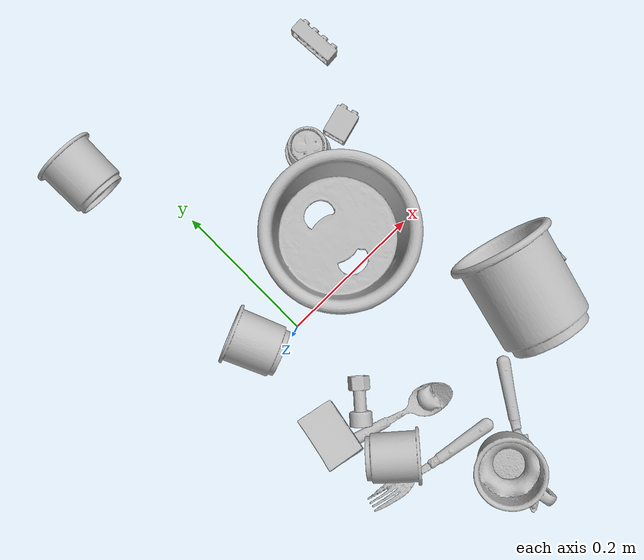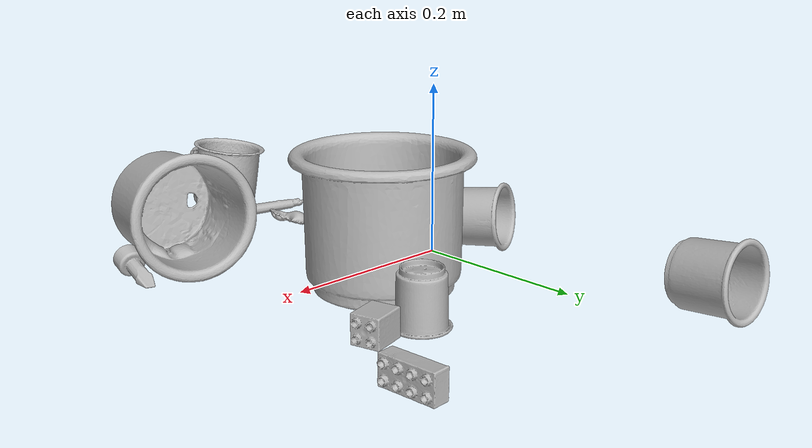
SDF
<sdf version="1.4">
  <world name="default">
    <light name="light1" type="point">
      <pose>0 0 1 0 0 0</pose>
      <diffuse>3 3 3 1</diffuse>
      <specular>3 3 3 1</specular>
    </light>
    <light name="light2" type="point">
      <pose>0 0.5 2 0 0 0</pose>
      <diffuse>1 1 1 1</diffuse>
      <specular>1 1 1 1</specular>
    </light>
    <light name="light3" type="point">
      <pose>0 0.5 2 0 0 0</pose>
      <diffuse>3 3 3 1</diffuse>
      <specular>3 3 3 1</specular>
    </light>
    <scene>
      <ambient>0.7 0.7 0.7</ambient>
    </scene>
    <model name="cup1">
      <link name="link_cup1">
        <collision name="default">
          <geometry>
            <mesh>
              <uri>model://e_cups/collision_meshes/collision.obj</uri>
              <scale>1.0 1.0 1.0</scale>
            </mesh>
          </geometry>
          <surface>
            <friction>
              <ode>
                <mu>0.5</mu>
                <mu2>0.5</mu2>
              </ode>
            </friction>
          <contact>
        <ode>
            <max_vel>0</max_vel>
            <min_depth>0.0001</min_depth>
            <kp>1e8</kp>
        </ode>
    </contact></surface>
        </collision>
        <visual name="default">
          <geometry>
            <mesh>
              <uri>model://e_cups/visual_meshes/visual.dae</uri>
              <scale>1.0 1.0 1.0</scale>
            </mesh>
          </geometry>
        </visual>
        <inertial>
          <mass>0.07679437845945358</mass>
          <pose>0.001135574304498732 0.002879783743992448 -0.0038829718250781298 0.6952411595659588 0.08767733322521654 -0.5235244631248706</pose>
          <inertia>
            <ixx>6.771342e-05</ixx>
            <iyy>7.077022e-05</iyy>
            <izz>6.4741864e-05</izz>
            <ixy>0</ixy>
            <ixz>0</ixz>
            <iyz>0</iyz>
          </inertia>
        </inertial>
      </link>
      <pose>-0.028272267431020737 -0.20751388370990753 0.03474121913313866 1.4816538265400812 -0.030157339568917595 0.8614214028507958</pose>
    </model>
    <model name="silverware1">
      <link name="link_silverware1">
        <collision name="default">
          <geometry>
            <mesh>
              <uri>model://spoon/collision_meshes/collision.obj</uri>
              <scale>1.0 1.0 1.0</scale>
            </mesh>
          </geometry>
          <surface>
            <friction>
              <ode>
                <mu>0.5</mu>
                <mu2>0.5</mu2>
              </ode>
            </friction>
          <contact>
        <ode>
            <max_vel>0</max_vel>
            <min_depth>0.0001</min_depth>
            <kp>1e8</kp>
        </ode>
    </contact></surface>
        </collision>
        <visual name="default">
          <geometry>
            <mesh>
              <uri>model://spoon/visual_meshes/visual.dae</uri>
              <scale>1.0 1.0 1.0</scale>
            </mesh>
          </geometry>
        </visual>
        <inertial>
          <mass>0.015083584003150463</mass>
          <pose>-0.005526313092559576 -0.001603418029844761 -0.000727165665011853 0.035216710638299134 -0.03906584880684835 0.006150613179751253</pose>
          <inertia>
            <ixx>8.389734e-07</ixx>
            <iyy>5.739254e-05</iyy>
            <izz>5.7806283e-05</izz>
            <ixy>0</ixy>
            <ixz>0</ixz>
            <iyz>0</iyz>
          </inertia>
        </inertial>
      </link>
      <pose>-0.003868567757308483 -0.17168578505516052 0.00936198327690363 -0.05562627037130128 -0.0035775753959877907 -0.27592900054186414</pose>
    </model>
    <model name="cup2">
      <link name="link_cup2">
        <collision name="default">
          <geometry>
            <mesh>
              <uri>model://g_cups/collision_meshes/collision.obj</uri>
              <scale>1.0 1.0 1.0</scale>
            </mesh>
          </geometry>
          <surface>
            <friction>
              <ode>
                <mu>0.5</mu>
                <mu2>0.5</mu2>
              </ode>
            </friction>
          <contact>
        <ode>
            <max_vel>0</max_vel>
            <min_depth>0.0001</min_depth>
            <kp>1e8</kp>
        </ode>
    </contact></surface>
        </collision>
        <visual name="default">
          <geometry>
            <mesh>
              <uri>model://g_cups/visual_meshes/visual.dae</uri>
              <scale>1.0 1.0 1.0</scale>
            </mesh>
          </geometry>
        </visual>
        <inertial>
          <mass>0.04187431186437607</mass>
          <pose>-0.0007946277037262917 -4.2064348235726357e-05 -0.0021329382434487343 -0.21382305588888167 -0.31410659578681893 0.31120215507532384</pose>
          <inertia>
            <ixx>4.8876722e-05</ixx>
            <iyy>4.871046e-05</iyy>
            <izz>5.0627856e-05</izz>
            <ixy>0</ixy>
            <ixz>0</ixz>
            <iyz>0</iyz>
          </inertia>
        </inertial>
      </link>
      <pose>-0.057655174285173416 0.33540210127830505 0.040138378739356995 1.4551195653559754 -0.5190330906240583 -3.093143476983353</pose>
    </model>
    <model name="silverware2">
      <link name="link_silverware2">
        <collision name="default">
          <geometry>
            <mesh>
              <uri>model://fork/collision_meshes/collision.obj</uri>
              <scale>1.0 1.0 1.0</scale>
            </mesh>
          </geometry>
          <surface>
            <friction>
              <ode>
                <mu>0.5</mu>
                <mu2>0.5</mu2>
              </ode>
            </friction>
          <contact>
        <ode>
            <max_vel>0</max_vel>
            <min_depth>0.0001</min_depth>
            <kp>1e8</kp>
        </ode>
    </contact></surface>
        </collision>
        <visual name="default">
          <geometry>
            <mesh>
              <uri>model://fork/visual_meshes/visual.dae</uri>
              <scale>1.0 1.0 1.0</scale>
            </mesh>
          </geometry>
        </visual>
        <inertial>
          <mass>0.025364622473716736</mass>
          <pose>-0.029570050537586212 0.00046588227269239724 0.00032188615296036005 -0.013551666838441594 -0.010977837199147297 0.014453899745261501</pose>
          <inertia>
            <ixx>8.8917335e-07</ixx>
            <iyy>6.621973e-05</iyy>
            <izz>6.661743e-05</izz>
            <ixy>0</ixy>
            <ixz>0</ixz>
            <iyz>0</iyz>
          </inertia>
        </inertial>
      </link>
      <pose>-0.0006261970847845078 -0.2553132176399231 0.007446605246514082 -3.0634999228637265 0.0028359059308987445 2.98187873660417</pose>
    </model>
    <model name="cup3">
      <link name="link_cup3">
        <collision name="default">
          <geometry>
            <mesh>
              <uri>model://f_cups/collision_meshes/collision.obj</uri>
              <scale>1.0 1.0 1.0</scale>
            </mesh>
          </geometry>
          <surface>
            <friction>
              <ode>
                <mu>0.5</mu>
                <mu2>0.5</mu2>
              </ode>
            </friction>
          <contact>
        <ode>
            <max_vel>0</max_vel>
            <min_depth>0.0001</min_depth>
            <kp>1e8</kp>
        </ode>
    </contact></surface>
        </collision>
        <visual name="default">
          <geometry>
            <mesh>
              <uri>model://f_cups/visual_meshes/visual.dae</uri>
              <scale>1.0 1.0 1.0</scale>
            </mesh>
          </geometry>
        </visual>
        <inertial>
          <mass>0.08338716626167297</mass>
          <pose>-0.0031714679207652807 -0.0006240069633349776 -0.003655536798760295 0.7862348245142414 -0.2607950949044878 -0.18237232658982702</pose>
          <inertia>
            <ixx>7.838616e-05</ixx>
            <iyy>8.222797e-05</iyy>
            <izz>8.560161e-05</izz>
            <ixy>0</ixy>
            <ixz>0</ixz>
            <iyz>0</iyz>
          </inertia>
        </inertial>
      </link>
      <pose>-0.05154435709118843 0.02338552661240101 0.03718683868646622 -0.5469409829463706 -1.4615612034146745 -0.6194575512004263</pose>
    </model>
    <model name="silverware3">
      <link name="link_silverware3">
        <collision name="default">
          <geometry>
            <mesh>
              <uri>model://knife/collision_meshes/collision.obj</uri>
              <scale>1.0 1.0 1.0</scale>
            </mesh>
          </geometry>
          <surface>
            <friction>
              <ode>
                <mu>0.5</mu>
                <mu2>0.5</mu2>
              </ode>
            </friction>
          <contact>
        <ode>
            <max_vel>0</max_vel>
            <min_depth>0.0001</min_depth>
            <kp>1e8</kp>
        </ode>
    </contact></surface>
        </collision>
        <visual name="default">
          <geometry>
            <mesh>
              <uri>model://knife/visual_meshes/visual.dae</uri>
              <scale>1.0 1.0 1.0</scale>
            </mesh>
          </geometry>
        </visual>
        <inertial>
          <mass>0.015509607270359993</mass>
          <pose>-0.02378525398671627 0.0015275129117071629 5.0620248657651246e-05 0.07305981518176793 0.01724841487141605 -0.0074098192082968535</pose>
          <inertia>
            <ixx>4.4022548e-07</ixx>
            <iyy>5.95854e-05</iyy>
            <izz>5.9727172e-05</izz>
            <ixy>0</ixy>
            <ixz>0</ixz>
            <iyz>0</iyz>
          </inertia>
        </inertial>
      </link>
      <pose>0.11092355847358704 -0.3093400001525879 0.005987577605992556 3.0918878764420143 0.0435282922641889 -2.1283376947966417</pose>
    </model>
    <model name="cup4">
      <link name="link_cup4">
        <collision name="default">
          <geometry>
            <mesh>
              <uri>model://d_cups/collision_meshes/collision.obj</uri>
              <scale>2.0 2.0 2.0</scale>
            </mesh>
          </geometry>
          <surface>
            <friction>
              <ode>
                <mu>0.5</mu>
                <mu2>0.5</mu2>
              </ode>
            </friction>
          <contact>
        <ode>
            <max_vel>0</max_vel>
            <min_depth>0.0001</min_depth>
            <kp>1e8</kp>
        </ode>
    </contact></surface>
        </collision>
        <visual name="default">
          <geometry>
            <mesh>
              <uri>model://d_cups/visual_meshes/visual.dae</uri>
              <scale>2.0 2.0 2.0</scale>
            </mesh>
          </geometry>
        </visual>
        <inertial>
          <mass>0.5481204390525818</mass>
          <pose>0.001613611588254571 0.0038234798703342676 -0.0045333015732467175 0.2401214667218237 -0.2470996070340832 0.5942599316130982</pose>
          <inertia>
            <ixx>0.001835623</ixx>
            <iyy>0.0018303102</iyy>
            <izz>0.0016615508</izz>
            <ixy>0</ixy>
            <ixz>0</ixz>
            <iyz>0</iyz>
          </inertia>
        </inertial>
      </link>
      <pose>0.2416214644908905 -0.16901256144046783 0.06541870534420013 -1.4578944404526157 -0.6936206052988029 -0.31341585510852366</pose>
    </model>
    <model name="cup41">
      <link name="link_cup41">
        <collision name="default">
          <geometry>
            <mesh>
              <uri>model://b_cups/collision_meshes/collision.obj</uri>
              <scale>1.0 1.0 1.0</scale>
            </mesh>
          </geometry>
          <surface>
            <friction>
              <ode>
                <mu>0.5</mu>
                <mu2>0.5</mu2>
              </ode>
            </friction>
          <contact>
        <ode>
            <max_vel>0</max_vel>
            <min_depth>0.0001</min_depth>
            <kp>1e8</kp>
        </ode>
    </contact></surface>
        </collision>
        <visual name="default">
          <geometry>
            <mesh>
              <uri>model://b_cups/visual_meshes/visual.dae</uri>
              <scale>1.0 1.0 1.0</scale>
            </mesh>
          </geometry>
        </visual>
        <inertial>
          <mass>0.04462150111794472</mass>
          <pose>0.0005182005697861314 0.0018058601999655366 -0.0013381819007918239 0.11356336410280554 0.038725039404113405 -0.3456939711537357</pose>
          <inertia>
            <ixx>2.9207904e-05</ixx>
            <iyy>2.8653376e-05</iyy>
            <izz>2.45779e-05</izz>
            <ixy>0</ixy>
            <ixz>0</ixz>
            <iyz>0</iyz>
          </inertia>
        </inertial>
      </link>
      <pose>0.17449025809764862 0.1564265787601471 0.032155025750398636 3.1415925408266694 -1.5595189717944005e-11 2.3618988670354537</pose>
    </model>
    <model name="cup5">
      <link name="link_cup5">
        <collision name="default">
          <geometry>
            <mesh>
              <uri>model://i_cups/collision_meshes/collision.obj</uri>
              <scale>2.0 2.0 2.0</scale>
            </mesh>
          </geometry>
          <surface>
            <friction>
              <ode>
                <mu>0.5</mu>
                <mu2>0.5</mu2>
              </ode>
            </friction>
          <contact>
        <ode>
            <max_vel>0</max_vel>
            <min_depth>0.0001</min_depth>
            <kp>1e8</kp>
        </ode>
    </contact></surface>
        </collision>
        <visual name="default">
          <geometry>
            <mesh>
              <uri>model://i_cups/visual_meshes/visual.dae</uri>
              <scale>2.0 2.0 2.0</scale>
            </mesh>
          </geometry>
        </visual>
        <inertial>
          <mass>0.7183689475059509</mass>
          <pose>0.00022480347251985222 0.0003359461552463472 -0.0017158043337985873 -0.028983189607302198 -0.03987301698166741 -0.34590760218104494</pose>
          <inertia>
            <ixx>0.0039783698</ixx>
            <iyy>0.004013422</iyy>
            <izz>0.0044464725</izz>
            <ixy>0</ixy>
            <ixz>0</ixz>
            <iyz>0</iyz>
          </inertia>
        </inertial>
      </link>
      <pose>0.1241828128695488 0.047855839133262634 0.0755496621131897 0.0019159893609847682 -0.00637117327337247 1.1238050521801297</pose>
    </model>
    <model name="cup51">
      <link name="link_cup51">
        <collision name="default">
          <geometry>
            <mesh>
              <uri>model://mug/collision_meshes/collision.obj</uri>
              <scale>1.0 1.0 1.0</scale>
            </mesh>
          </geometry>
          <surface>
            <friction>
              <ode>
                <mu>0.5</mu>
                <mu2>0.5</mu2>
              </ode>
            </friction>
          <contact>
        <ode>
            <max_vel>0</max_vel>
            <min_depth>0.0001</min_depth>
            <kp>1e8</kp>
        </ode>
    </contact></surface>
        </collision>
        <visual name="default">
          <geometry>
            <mesh>
              <uri>model://mug/visual_meshes/visual.dae</uri>
              <scale>1.0 1.0 1.0</scale>
            </mesh>
          </geometry>
        </visual>
        <inertial>
          <mass>0.1239403635263443</mass>
          <pose>0.009571672417223454 0.0008143244776874781 -0.01094733364880085 -0.12983126758676797 0.08737752450174939 0.055073145905888306</pose>
          <inertia>
            <ixx>0.0001231125</ixx>
            <iyy>0.00013750937</iyy>
            <izz>0.00015903146</izz>
            <ixy>0</ixy>
            <ixz>0</ixz>
            <iyz>0</iyz>
          </inertia>
        </inertial>
      </link>
      <pose>0.07218892872333527 -0.331582635641098 0.04639577865600586 -0.107221195818629 0.09030782956432318 1.7112722632469501</pose>
    </model>
    <model name="toy1">
      <link name="link_toy1">
        <collision name="default">
          <geometry>
            <mesh>
              <uri>model://e_toy_airplane/collision_meshes/collision.obj</uri>
              <scale>1.0 1.0 1.0</scale>
            </mesh>
          </geometry>
          <surface>
            <friction>
              <ode>
                <mu>0.5</mu>
                <mu2>0.5</mu2>
              </ode>
            </friction>
          <contact>
        <ode>
            <max_vel>0</max_vel>
            <min_depth>0.0001</min_depth>
            <kp>1e8</kp>
        </ode>
    </contact></surface>
        </collision>
        <visual name="default">
          <geometry>
            <mesh>
              <uri>model://e_toy_airplane/visual_meshes/visual.dae</uri>
              <scale>1.0 1.0 1.0</scale>
            </mesh>
          </geometry>
        </visual>
        <inertial>
          <mass>0.022831259295344353</mass>
          <pose>0.00011740475019905716 -2.2482799977296963e-05 -0.011187204159796238 0.005518483498250157 0.009228324176637706 0.15041338923558414</pose>
          <inertia>
            <ixx>6.9683606e-06</ixx>
            <iyy>6.897077e-06</iyy>
            <izz>2.0942666e-06</izz>
            <ixy>0</ixy>
            <ixz>0</ixz>
            <iyz>0</iyz>
          </inertia>
        </inertial>
      </link>
      <pose>0.3043796718120575 -0.15213018655776978 0.010331661440432072 2.505750682278449 -1.216106793628254 2.112221642355452</pose>
    </model>
    <model name="toy2">
      <link name="link_toy2">
        <collision name="default">
          <geometry>
            <mesh>
              <uri>model://c_toy_airplane/collision_meshes/collision.obj</uri>
              <scale>1.0 1.0 1.0</scale>
            </mesh>
          </geometry>
          <surface>
            <friction>
              <ode>
                <mu>0.5</mu>
                <mu2>0.5</mu2>
              </ode>
            </friction>
          <contact>
        <ode>
            <max_vel>0</max_vel>
            <min_depth>0.0001</min_depth>
            <kp>1e8</kp>
        </ode>
    </contact></surface>
        </collision>
        <visual name="default">
          <geometry>
            <mesh>
              <uri>model://c_toy_airplane/visual_meshes/visual.dae</uri>
              <scale>1.0 1.0 1.0</scale>
            </mesh>
          </geometry>
        </visual>
        <inertial>
          <mass>0.014964861795306206</mass>
          <pose>-0.00023024252732284367 -4.4292315237726143e-07 -0.006080531980842352 -0.006193085961310731 -0.016797608001683555 0.7655123908688324</pose>
          <inertia>
            <ixx>6.871557e-06</ixx>
            <iyy>6.852165e-06</iyy>
            <izz>1.6133057e-06</izz>
            <ixy>0</ixy>
            <ixz>0</ixz>
            <iyz>0</iyz>
          </inertia>
        </inertial>
      </link>
      <pose>-0.009588733315467834 -0.1276506930589676 0.01460242085158825 1.5890332102216775 -0.12884085814758442 2.428748281183537</pose>
    </model>
    <model name="toy3">
      <link name="link_toy3">
        <collision name="default">
          <geometry>
            <mesh>
              <uri>model://c_lego_duplo/collision_meshes/collision.obj</uri>
              <scale>1.0 1.0 1.0</scale>
            </mesh>
          </geometry>
          <surface>
            <friction>
              <ode>
                <mu>0.5</mu>
                <mu2>0.5</mu2>
              </ode>
            </friction>
          <contact>
        <ode>
            <max_vel>0</max_vel>
            <min_depth>0.0001</min_depth>
            <kp>1e8</kp>
        </ode>
    </contact></surface>
        </collision>
        <visual name="default">
          <geometry>
            <mesh>
              <uri>model://c_lego_duplo/visual_meshes/visual.dae</uri>
              <scale>1.0 1.0 1.0</scale>
            </mesh>
          </geometry>
        </visual>
        <inertial>
          <mass>0.043811071664094925</mass>
          <pose>0.00031645968556404114 0.00019464633078314364 0.0010453150607645512 -0.011520790971684333 0.005900079198968262 0.031100329952374963</pose>
          <inertia>
            <ixx>1.685932e-05</ixx>
            <iyy>5.3854724e-06</iyy>
            <izz>1.970185e-05</izz>
            <ixy>0</ixy>
            <ixz>0</ixz>
            <iyz>0</iyz>
          </inertia>
        </inertial>
      </link>
      <pose>0.2824098765850067 0.25187385082244873 0.016402892768383026 -1.417027179274216 1.544407963080586 -1.3438774414030434</pose>
    </model>
    <model name="toy4">
      <link name="link_toy4">
        <collision name="default">
          <geometry>
            <mesh>
              <uri>model://foam_brick/collision_meshes/collision.obj</uri>
              <scale>1.0 1.0 1.0</scale>
            </mesh>
          </geometry>
          <surface>
            <friction>
              <ode>
                <mu>0.5</mu>
                <mu2>0.5</mu2>
              </ode>
            </friction>
          <contact>
        <ode>
            <max_vel>0</max_vel>
            <min_depth>0.0001</min_depth>
            <kp>1e8</kp>
        </ode>
    </contact></surface>
        </collision>
        <visual name="default">
          <geometry>
            <mesh>
              <uri>model://foam_brick/visual_meshes/visual.dae</uri>
              <scale>1.0 1.0 1.0</scale>
            </mesh>
          </geometry>
        </visual>
        <inertial>
          <mass>0.278400182723999</mass>
          <pose>-0.0002522472059354186 0.00034584358218126 -0.0002532101352699101 -0.2940175595239471 0.01727444673583901 -0.0007449899720057078</pose>
          <inertia>
            <ixx>0.00012161039</ixx>
            <iyy>0.00019415727</iyy>
            <izz>0.00019662478</izz>
            <ixy>0</ixy>
            <ixz>0</ixz>
            <iyz>0</iyz>
          </inertia>
        </inertial>
      </link>
      <pose>-0.06610964238643646 -0.13099174201488495 0.03410772979259491 3.0965816773063826 -0.22510925709021506 -1.7481067831794188</pose>
    </model>
    <model name="toy5">
      <link name="link_toy5">
        <collision name="default">
          <geometry>
            <mesh>
              <uri>model://f_lego_duplo/collision_meshes/collision.obj</uri>
              <scale>1.0 1.0 1.0</scale>
            </mesh>
          </geometry>
          <surface>
            <friction>
              <ode>
                <mu>0.5</mu>
                <mu2>0.5</mu2>
              </ode>
            </friction>
          <contact>
        <ode>
            <max_vel>0</max_vel>
            <min_depth>0.0001</min_depth>
            <kp>1e8</kp>
        </ode>
    </contact></surface>
        </collision>
        <visual name="default">
          <geometry>
            <mesh>
              <uri>model://f_lego_duplo/visual_meshes/visual.dae</uri>
              <scale>1.0 1.0 1.0</scale>
            </mesh>
          </geometry>
        </visual>
        <inertial>
          <mass>0.033785246312618256</mass>
          <pose>2.369392132095527e-05 0.00013393175322562456 0.0018837875686585903 0.029838526741840128 -0.014425189077584645 -0.6756601169838921</pose>
          <inertia>
            <ixx>7.139008e-06</ixx>
            <iyy>7.202609e-06</iyy>
            <izz>6.1969613e-06</izz>
            <ixy>0</ixy>
            <ixz>0</ixz>
            <iyz>0</iyz>
          </inertia>
        </inertial>
      </link>
      <pose>0.23092839121818542 0.14996163547039032 0.01620810106396675 1.5791072715485768 -7.75235973509096e-05 1.840047034924889</pose>
    </model>
  <physics type="ode">
      <max_contacts>50</max_contacts>
      <ode>
        <solver>
          <type>quick</type>
          <iters>75</iters>
        </solver>
        <constraints>
          <contact_max_correcting_vel>0</contact_max_correcting_vel>
          <contact_surface_layer>0</contact_surface_layer>
        </constraints>
      </ode>
    </physics></world>
</sdf>
